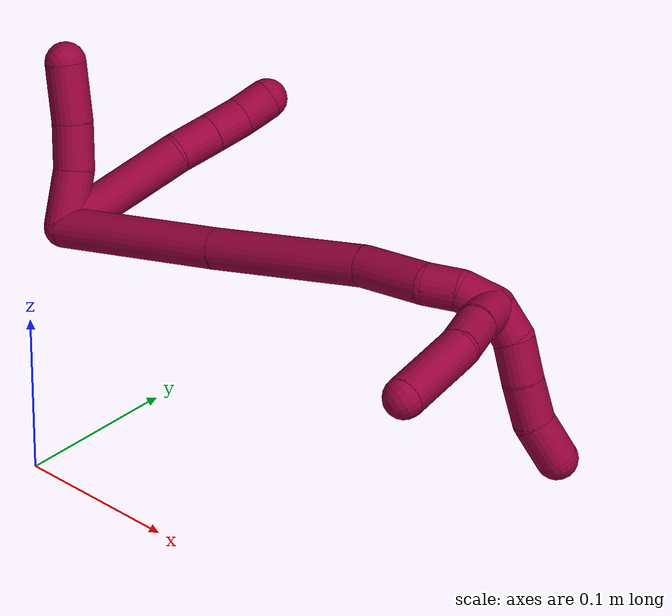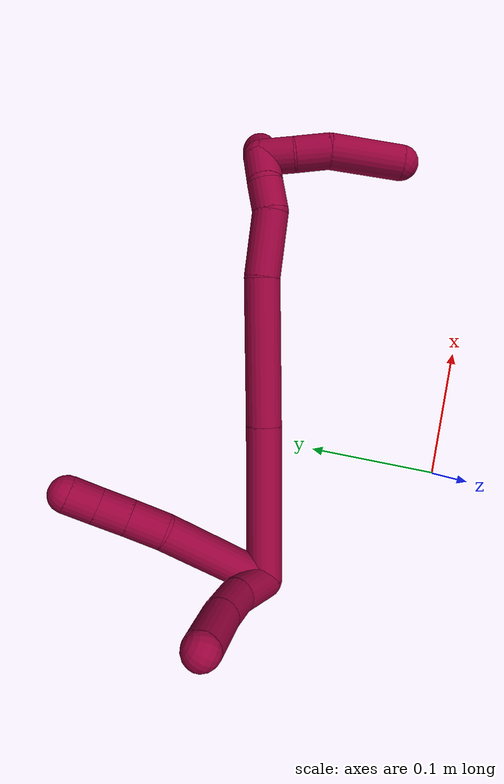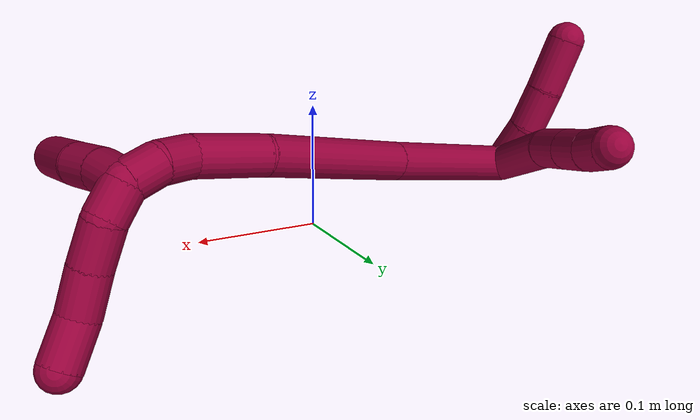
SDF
<sdf version="1.7">
 <world name="default">
  <model name="8">
   <static>0</static>
   <link name="8">
    <collision name="collision-cylinder-e_1_2_8">
     <pose>-0.00031 8.1e-05 0.040808 -0.001987 -0.007595 8e-06</pose>
     <geometry><cylinder><radius>0.0125</radius><length>0.081618</length></cylinder></geometry>
     <surface>
      <friction><ode><mu>1.16</mu><mu2>1.16</mu2><slip1>0</slip1><slip2>0</slip2></ode></friction>
      <contact><ode><kp>1e+06</kp><kd>1</kd><max_vel>0</max_vel><min_depth>0.001</min_depth></ode></contact>
     </surface>
    </collision>
    <visual name="visual-cylinder-e_1_2_8">
     <pose>-0.00031 8.1e-05 0.040808 -0.001987 -0.007595 8e-06</pose>
     <geometry><cylinder><radius>0.0125</radius><length>0.081618</length></cylinder></geometry>
     <material><ambient>0.584314 0 0.227451 1</ambient></material>
    </visual>
    <collision name="collision-cylinder-e_2_8_9">
     <pose>-0.001879 0.002417 0.094032 -0.179676 -0.099449 0.008966</pose>
     <geometry><cylinder><radius>0.0125</radius><length>0.025364</length></cylinder></geometry>
     <surface>
      <friction><ode><mu>1.16</mu><mu2>1.16</mu2><slip1>0</slip1><slip2>0</slip2></ode></friction>
      <contact><ode><kp>1e+06</kp><kd>1</kd><max_vel>0</max_vel><min_depth>0.001</min_depth></ode></contact>
     </surface>
    </collision>
    <visual name="visual-cylinder-e_2_8_9">
     <pose>-0.001879 0.002417 0.094032 -0.179676 -0.099449 0.008966</pose>
     <geometry><cylinder><radius>0.0125</radius><length>0.025364</length></cylinder></geometry>
     <material><ambient>0.584314 0 0.227451 1</ambient></material>
    </visual>
    <collision name="collision-cylinder-e_3_9_10">
     <pose>-0.00444 0.006661 0.117295 -0.181302 -0.117523 0.010695</pose>
     <geometry><cylinder><radius>0.0125</radius><length>0.022209</length></cylinder></geometry>
     <surface>
      <friction><ode><mu>1.16</mu><mu2>1.16</mu2><slip1>0</slip1><slip2>0</slip2></ode></friction>
      <contact><ode><kp>1e+06</kp><kd>1</kd><max_vel>0</max_vel><min_depth>0.001</min_depth></ode></contact>
     </surface>
    </collision>
    <visual name="visual-cylinder-e_3_9_10">
     <pose>-0.00444 0.006661 0.117295 -0.181302 -0.117523 0.010695</pose>
     <geometry><cylinder><radius>0.0125</radius><length>0.022209</length></cylinder></geometry>
     <material><ambient>0.584314 0 0.227451 1</ambient></material>
    </visual>
    <collision name="collision-cylinder-e_4_10_6">
     <pose>-0.00669 0.009343 0.13848 -0.066937 -0.091214 0.003056</pose>
     <geometry><cylinder><radius>0.0125</radius><length>0.020809</length></cylinder></geometry>
     <surface>
      <friction><ode><mu>1.16</mu><mu2>1.16</mu2><slip1>0</slip1><slip2>0</slip2></ode></friction>
      <contact><ode><kp>1e+06</kp><kd>1</kd><max_vel>0</max_vel><min_depth>0.001</min_depth></ode></contact>
     </surface>
    </collision>
    <visual name="visual-cylinder-e_4_10_6">
     <pose>-0.00669 0.009343 0.13848 -0.066937 -0.091214 0.003056</pose>
     <geometry><cylinder><radius>0.0125</radius><length>0.020809</length></cylinder></geometry>
     <material><ambient>0.584314 0 0.227451 1</ambient></material>
    </visual>
    <collision name="collision-cylinder-e_1_2_11">
     <pose>-0.00713 -0.010905 0.011574 0.755627 -0.421485 -0.169394</pose>
     <geometry><cylinder><radius>0.0125</radius><length>0.034855</length></cylinder></geometry>
     <surface>
      <friction><ode><mu>1.16</mu><mu2>1.16</mu2><slip1>0</slip1><slip2>0</slip2></ode></friction>
      <contact><ode><kp>1e+06</kp><kd>1</kd><max_vel>0</max_vel><min_depth>0.001</min_depth></ode></contact>
     </surface>
    </collision>
    <visual name="visual-cylinder-e_1_2_11">
     <pose>-0.00713 -0.010905 0.011574 0.755627 -0.421485 -0.169394</pose>
     <geometry><cylinder><radius>0.0125</radius><length>0.034855</length></cylinder></geometry>
     <material><ambient>0.584314 0 0.227451 1</ambient></material>
    </visual>
    <collision name="collision-cylinder-e_2_11_12">
     <pose>-0.019914 -0.033021 0.03003 1.02033 -0.405931 -0.22931</pose>
     <geometry><cylinder><radius>0.0125</radius><length>0.028637</length></cylinder></geometry>
     <surface>
      <friction><ode><mu>1.16</mu><mu2>1.16</mu2><slip1>0</slip1><slip2>0</slip2></ode></friction>
      <contact><ode><kp>1e+06</kp><kd>1</kd><max_vel>0</max_vel><min_depth>0.001</min_depth></ode></contact>
     </surface>
    </collision>
    <visual name="visual-cylinder-e_2_11_12">
     <pose>-0.019914 -0.033021 0.03003 1.02033 -0.405931 -0.22931</pose>
     <geometry><cylinder><radius>0.0125</radius><length>0.028637</length></cylinder></geometry>
     <material><ambient>0.584314 0 0.227451 1</ambient></material>
    </visual>
    <collision name="collision-cylinder-e_3_12_5">
     <pose>-0.032865 -0.05931 0.044166 1.12231 -0.411244 -0.260709</pose>
     <geometry><cylinder><radius>0.0125</radius><length>0.036508</length></cylinder></geometry>
     <surface>
      <friction><ode><mu>1.16</mu><mu2>1.16</mu2><slip1>0</slip1><slip2>0</slip2></ode></friction>
      <contact><ode><kp>1e+06</kp><kd>1</kd><max_vel>0</max_vel><min_depth>0.001</min_depth></ode></contact>
     </surface>
    </collision>
    <visual name="visual-cylinder-e_3_12_5">
     <pose>-0.032865 -0.05931 0.044166 1.12231 -0.411244 -0.260709</pose>
     <geometry><cylinder><radius>0.0125</radius><length>0.036508</length></cylinder></geometry>
     <material><ambient>0.584314 0 0.227451 1</ambient></material>
    </visual>
    <collision name="collision-cylinder-e_1_2_13">
     <pose>0.046749 -0.003102 0.028563 0.108189 1.01972 0.060537</pose>
     <geometry><cylinder><radius>0.0125</radius><length>0.109743</length></cylinder></geometry>
     <surface>
      <friction><ode><mu>1.16</mu><mu2>1.16</mu2><slip1>0</slip1><slip2>0</slip2></ode></friction>
      <contact><ode><kp>1e+06</kp><kd>1</kd><max_vel>0</max_vel><min_depth>0.001</min_depth></ode></contact>
     </surface>
    </collision>
    <visual name="visual-cylinder-e_1_2_13">
     <pose>0.046749 -0.003102 0.028563 0.108189 1.01972 0.060537</pose>
     <geometry><cylinder><radius>0.0125</radius><length>0.109743</length></cylinder></geometry>
     <material><ambient>0.584314 0 0.227451 1</ambient></material>
    </visual>
    <collision name="collision-cylinder-e_2_13_14">
     <pose>0.136551 -0.009855 0.084358 0.133261 1.00279 0.073118</pose>
     <geometry><cylinder><radius>0.0125</radius><length>0.102149</length></cylinder></geometry>
     <surface>
      <friction><ode><mu>1.16</mu><mu2>1.16</mu2><slip1>0</slip1><slip2>0</slip2></ode></friction>
      <contact><ode><kp>1e+06</kp><kd>1</kd><max_vel>0</max_vel><min_depth>0.001</min_depth></ode></contact>
     </surface>
    </collision>
    <visual name="visual-cylinder-e_2_13_14">
     <pose>0.136551 -0.009855 0.084358 0.133261 1.00279 0.073118</pose>
     <geometry><cylinder><radius>0.0125</radius><length>0.102149</length></cylinder></geometry>
     <material><ambient>0.584314 0 0.227451 1</ambient></material>
    </visual>
    <collision name="collision-cylinder-e_3_14_15">
     <pose>0.200505 -0.014649 0.120652 0.125485 1.15876 0.082164</pose>
     <geometry><cylinder><radius>0.0125</radius><length>0.045616</length></cylinder></geometry>
     <surface>
      <friction><ode><mu>1.16</mu><mu2>1.16</mu2><slip1>0</slip1><slip2>0</slip2></ode></friction>
      <contact><ode><kp>1e+06</kp><kd>1</kd><max_vel>0</max_vel><min_depth>0.001</min_depth></ode></contact>
     </surface>
    </collision>
    <visual name="visual-cylinder-e_3_14_15">
     <pose>0.200505 -0.014649 0.120652 0.125485 1.15876 0.082164</pose>
     <geometry><cylinder><radius>0.0125</radius><length>0.045616</length></cylinder></geometry>
     <material><ambient>0.584314 0 0.227451 1</ambient></material>
    </visual>
    <collision name="collision-cylinder-e_4_15_16">
     <pose>0.229616 -0.014143 0.136078 -0.253613 0.895763 -0.122352</pose>
     <geometry><cylinder><radius>0.0125</radius><length>0.021039</length></cylinder></geometry>
     <surface>
      <friction><ode><mu>1.16</mu><mu2>1.16</mu2><slip1>0</slip1><slip2>0</slip2></ode></friction>
      <contact><ode><kp>1e+06</kp><kd>1</kd><max_vel>0</max_vel><min_depth>0.001</min_depth></ode></contact>
     </surface>
    </collision>
    <visual name="visual-cylinder-e_4_15_16">
     <pose>0.229616 -0.014143 0.136078 -0.253613 0.895763 -0.122352</pose>
     <geometry><cylinder><radius>0.0125</radius><length>0.021039</length></cylinder></geometry>
     <material><ambient>0.584314 0 0.227451 1</ambient></material>
    </visual>
    <collision name="collision-cylinder-e_5_16_1">
     <pose>0.246338 -0.00809 0.147263 -0.740067 0.91628 -0.378009</pose>
     <geometry><cylinder><radius>0.0125</radius><length>0.021454</length></cylinder></geometry>
     <surface>
      <friction><ode><mu>1.16</mu><mu2>1.16</mu2><slip1>0</slip1><slip2>0</slip2></ode></friction>
      <contact><ode><kp>1e+06</kp><kd>1</kd><max_vel>0</max_vel><min_depth>0.001</min_depth></ode></contact>
     </surface>
    </collision>
    <visual name="visual-cylinder-e_5_16_1">
     <pose>0.246338 -0.00809 0.147263 -0.740067 0.91628 -0.378009</pose>
     <geometry><cylinder><radius>0.0125</radius><length>0.021454</length></cylinder></geometry>
     <material><ambient>0.584314 0 0.227451 1</ambient></material>
    </visual>
    <collision name="collision-cylinder-e_1_1_17">
     <pose>0.260728 0.005085 0.152192 -1.5587 0.590499 -0.583796</pose>
     <geometry><cylinder><radius>0.0125</radius><length>0.021121</length></cylinder></geometry>
     <surface>
      <friction><ode><mu>1.16</mu><mu2>1.16</mu2><slip1>0</slip1><slip2>0</slip2></ode></friction>
      <contact><ode><kp>1e+06</kp><kd>1</kd><max_vel>0</max_vel><min_depth>0.001</min_depth></ode></contact>
     </surface>
    </collision>
    <visual name="visual-cylinder-e_1_1_17">
     <pose>0.260728 0.005085 0.152192 -1.5587 0.590499 -0.583796</pose>
     <geometry><cylinder><radius>0.0125</radius><length>0.021121</length></cylinder></geometry>
     <material><ambient>0.584314 0 0.227451 1</ambient></material>
    </visual>
    <collision name="collision-cylinder-e_2_17_18">
     <pose>0.271863 0.024911 0.148669 -1.88801 0.424211 -0.578048</pose>
     <geometry><cylinder><radius>0.0125</radius><length>0.025532</length></cylinder></geometry>
     <surface>
      <friction><ode><mu>1.16</mu><mu2>1.16</mu2><slip1>0</slip1><slip2>0</slip2></ode></friction>
      <contact><ode><kp>1e+06</kp><kd>1</kd><max_vel>0</max_vel><min_depth>0.001</min_depth></ode></contact>
     </surface>
    </collision>
    <visual name="visual-cylinder-e_2_17_18">
     <pose>0.271863 0.024911 0.148669 -1.88801 0.424211 -0.578048</pose>
     <geometry><cylinder><radius>0.0125</radius><length>0.025532</length></cylinder></geometry>
     <material><ambient>0.584314 0 0.227451 1</ambient></material>
    </visual>
    <collision name="collision-cylinder-e_3_18_19">
     <pose>0.281848 0.047908 0.142151 -1.80813 0.367528 -0.46386</pose>
     <geometry><cylinder><radius>0.0125</radius><length>0.026333</length></cylinder></geometry>
     <surface>
      <friction><ode><mu>1.16</mu><mu2>1.16</mu2><slip1>0</slip1><slip2>0</slip2></ode></friction>
      <contact><ode><kp>1e+06</kp><kd>1</kd><max_vel>0</max_vel><min_depth>0.001</min_depth></ode></contact>
     </surface>
    </collision>
    <visual name="visual-cylinder-e_3_18_19">
     <pose>0.281848 0.047908 0.142151 -1.80813 0.367528 -0.46386</pose>
     <geometry><cylinder><radius>0.0125</radius><length>0.026333</length></cylinder></geometry>
     <material><ambient>0.584314 0 0.227451 1</ambient></material>
    </visual>
    <collision name="collision-cylinder-e_4_19_4">
     <pose>0.29245 0.071999 0.139885 -1.51957 0.449715 -0.427944</pose>
     <geometry><cylinder><radius>0.0125</radius><length>0.027014</length></cylinder></geometry>
     <surface>
      <friction><ode><mu>1.16</mu><mu2>1.16</mu2><slip1>0</slip1><slip2>0</slip2></ode></friction>
      <contact><ode><kp>1e+06</kp><kd>1</kd><max_vel>0</max_vel><min_depth>0.001</min_depth></ode></contact>
     </surface>
    </collision>
    <visual name="visual-cylinder-e_4_19_4">
     <pose>0.29245 0.071999 0.139885 -1.51957 0.449715 -0.427944</pose>
     <geometry><cylinder><radius>0.0125</radius><length>0.027014</length></cylinder></geometry>
     <material><ambient>0.584314 0 0.227451 1</ambient></material>
    </visual>
    <collision name="collision-cylinder-e_1_1_20">
     <pose>0.260801 -0.008544 0.143353 2.63395 0.537243 1.63009</pose>
     <geometry><cylinder><radius>0.0125</radius><length>0.023263</length></cylinder></geometry>
     <surface>
      <friction><ode><mu>1.16</mu><mu2>1.16</mu2><slip1>0</slip1><slip2>0</slip2></ode></friction>
      <contact><ode><kp>1e+06</kp><kd>1</kd><max_vel>0</max_vel><min_depth>0.001</min_depth></ode></contact>
     </surface>
    </collision>
    <visual name="visual-cylinder-e_1_1_20">
     <pose>0.260801 -0.008544 0.143353 2.63395 0.537243 1.63009</pose>
     <geometry><cylinder><radius>0.0125</radius><length>0.023263</length></cylinder></geometry>
     <material><ambient>0.584314 0 0.227451 1</ambient></material>
    </visual>
    <collision name="collision-cylinder-e_2_20_21">
     <pose>0.27399 -0.016999 0.125154 2.77846 0.620472 2.10145</pose>
     <geometry><cylinder><radius>0.0125</radius><length>0.024893</length></cylinder></geometry>
     <surface>
      <friction><ode><mu>1.16</mu><mu2>1.16</mu2><slip1>0</slip1><slip2>0</slip2></ode></friction>
      <contact><ode><kp>1e+06</kp><kd>1</kd><max_vel>0</max_vel><min_depth>0.001</min_depth></ode></contact>
     </surface>
    </collision>
    <visual name="visual-cylinder-e_2_20_21">
     <pose>0.27399 -0.016999 0.125154 2.77846 0.620472 2.10145</pose>
     <geometry><cylinder><radius>0.0125</radius><length>0.024893</length></cylinder></geometry>
     <material><ambient>0.584314 0 0.227451 1</ambient></material>
    </visual>
    <collision name="collision-cylinder-e_3_21_3">
     <pose>0.291026 -0.026776 0.092499 2.88113 0.387638 1.96476</pose>
     <geometry><cylinder><radius>0.0125</radius><length>0.051844</length></cylinder></geometry>
     <surface>
      <friction><ode><mu>1.16</mu><mu2>1.16</mu2><slip1>0</slip1><slip2>0</slip2></ode></friction>
      <contact><ode><kp>1e+06</kp><kd>1</kd><max_vel>0</max_vel><min_depth>0.001</min_depth></ode></contact>
     </surface>
    </collision>
    <visual name="visual-cylinder-e_3_21_3">
     <pose>0.291026 -0.026776 0.092499 2.88113 0.387638 1.96476</pose>
     <geometry><cylinder><radius>0.0125</radius><length>0.051844</length></cylinder></geometry>
     <material><ambient>0.584314 0 0.227451 1</ambient></material>
    </visual>
    <collision name="collision-sphere-3">
     <pose>0.300824 -0.032956 0.069309 0 -0 0</pose>
     <geometry><sphere><radius>0.0125</radius></sphere></geometry>
     <surface>
      <friction><ode><mu>1.16</mu><mu2>1.16</mu2><slip1>0</slip1><slip2>0</slip2></ode></friction>
      <contact><ode><kp>1e+06</kp><kd>1</kd><max_vel>0</max_vel><min_depth>0.001</min_depth></ode></contact>
     </surface>
    </collision>
    <visual name="visual-sphere-3">
     <pose>0.300824 -0.032956 0.069309 0 -0 0</pose>
     <geometry><sphere><radius>0.0125</radius></sphere></geometry>
     <material><ambient>0.584314 0 0.227451 1</ambient></material>
    </visual>
    <collision name="collision-sphere-21">
     <pose>0.281227 -0.020596 0.115688 0 -0 0</pose>
     <geometry><sphere><radius>0.0125</radius></sphere></geometry>
     <surface>
      <friction><ode><mu>1.16</mu><mu2>1.16</mu2><slip1>0</slip1><slip2>0</slip2></ode></friction>
      <contact><ode><kp>1e+06</kp><kd>1</kd><max_vel>0</max_vel><min_depth>0.001</min_depth></ode></contact>
     </surface>
    </collision>
    <visual name="visual-sphere-21">
     <pose>0.281227 -0.020596 0.115688 0 -0 0</pose>
     <geometry><sphere><radius>0.0125</radius></sphere></geometry>
     <material><ambient>0.584314 0 0.227451 1</ambient></material>
    </visual>
    <collision name="collision-sphere-20">
     <pose>0.266754 -0.013402 0.13462 0 -0 0</pose>
     <geometry><sphere><radius>0.0125</radius></sphere></geometry>
     <surface>
      <friction><ode><mu>1.16</mu><mu2>1.16</mu2><slip1>0</slip1><slip2>0</slip2></ode></friction>
      <contact><ode><kp>1e+06</kp><kd>1</kd><max_vel>0</max_vel><min_depth>0.001</min_depth></ode></contact>
     </surface>
    </collision>
    <visual name="visual-sphere-20">
     <pose>0.266754 -0.013402 0.13462 0 -0 0</pose>
     <geometry><sphere><radius>0.0125</radius></sphere></geometry>
     <material><ambient>0.584314 0 0.227451 1</ambient></material>
    </visual>
    <collision name="collision-sphere-4">
     <pose>0.298322 0.084147 0.140508 0 -0 0</pose>
     <geometry><sphere><radius>0.0125</radius></sphere></geometry>
     <surface>
      <friction><ode><mu>1.16</mu><mu2>1.16</mu2><slip1>0</slip1><slip2>0</slip2></ode></friction>
      <contact><ode><kp>1e+06</kp><kd>1</kd><max_vel>0</max_vel><min_depth>0.001</min_depth></ode></contact>
     </surface>
    </collision>
    <visual name="visual-sphere-4">
     <pose>0.298322 0.084147 0.140508 0 -0 0</pose>
     <geometry><sphere><radius>0.0125</radius></sphere></geometry>
     <material><ambient>0.584314 0 0.227451 1</ambient></material>
    </visual>
    <collision name="collision-sphere-11">
     <pose>-0.01426 -0.02181 0.023149 0 -0 0</pose>
     <geometry><sphere><radius>0.0125</radius></sphere></geometry>
     <surface>
      <friction><ode><mu>1.16</mu><mu2>1.16</mu2><slip1>0</slip1><slip2>0</slip2></ode></friction>
      <contact><ode><kp>1e+06</kp><kd>1</kd><max_vel>0</max_vel><min_depth>0.001</min_depth></ode></contact>
     </surface>
    </collision>
    <visual name="visual-sphere-11">
     <pose>-0.01426 -0.02181 0.023149 0 -0 0</pose>
     <geometry><sphere><radius>0.0125</radius></sphere></geometry>
     <material><ambient>0.584314 0 0.227451 1</ambient></material>
    </visual>
    <collision name="collision-sphere-6">
     <pose>-0.007638 0.010036 0.148818 0 -0 0</pose>
     <geometry><sphere><radius>0.0125</radius></sphere></geometry>
     <surface>
      <friction><ode><mu>1.16</mu><mu2>1.16</mu2><slip1>0</slip1><slip2>0</slip2></ode></friction>
      <contact><ode><kp>1e+06</kp><kd>1</kd><max_vel>0</max_vel><min_depth>0.001</min_depth></ode></contact>
     </surface>
    </collision>
    <visual name="visual-sphere-6">
     <pose>-0.007638 0.010036 0.148818 0 -0 0</pose>
     <geometry><sphere><radius>0.0125</radius></sphere></geometry>
     <material><ambient>0.584314 0 0.227451 1</ambient></material>
    </visual>
    <collision name="collision-sphere-10">
     <pose>-0.005742 0.008649 0.128142 0 -0 0</pose>
     <geometry><sphere><radius>0.0125</radius></sphere></geometry>
     <surface>
      <friction><ode><mu>1.16</mu><mu2>1.16</mu2><slip1>0</slip1><slip2>0</slip2></ode></friction>
      <contact><ode><kp>1e+06</kp><kd>1</kd><max_vel>0</max_vel><min_depth>0.001</min_depth></ode></contact>
     </surface>
    </collision>
    <visual name="visual-sphere-10">
     <pose>-0.005742 0.008649 0.128142 0 -0 0</pose>
     <geometry><sphere><radius>0.0125</radius></sphere></geometry>
     <material><ambient>0.584314 0 0.227451 1</ambient></material>
    </visual>
    <collision name="collision-sphere-9">
     <pose>-0.003138 0.004673 0.106448 0 -0 0</pose>
     <geometry><sphere><radius>0.0125</radius></sphere></geometry>
     <surface>
      <friction><ode><mu>1.16</mu><mu2>1.16</mu2><slip1>0</slip1><slip2>0</slip2></ode></friction>
      <contact><ode><kp>1e+06</kp><kd>1</kd><max_vel>0</max_vel><min_depth>0.001</min_depth></ode></contact>
     </surface>
    </collision>
    <visual name="visual-sphere-9">
     <pose>-0.003138 0.004673 0.106448 0 -0 0</pose>
     <geometry><sphere><radius>0.0125</radius></sphere></geometry>
     <material><ambient>0.584314 0 0.227451 1</ambient></material>
    </visual>
    <collision name="collision-sphere-2">
     <geometry><sphere><radius>0.0125</radius></sphere></geometry>
     <surface>
      <friction><ode><mu>1.16</mu><mu2>1.16</mu2><slip1>0</slip1><slip2>0</slip2></ode></friction>
      <contact><ode><kp>1e+06</kp><kd>1</kd><max_vel>0</max_vel><min_depth>0.001</min_depth></ode></contact>
     </surface>
    </collision>
    <visual name="visual-sphere-2">
     <geometry><sphere><radius>0.0125</radius></sphere></geometry>
     <material><ambient>0.584314 0 0.227451 1</ambient></material>
    </visual>
    <collision name="collision-sphere-19">
     <pose>0.286579 0.059851 0.139262 0 -0 0</pose>
     <geometry><sphere><radius>0.0125</radius></sphere></geometry>
     <surface>
      <friction><ode><mu>1.16</mu><mu2>1.16</mu2><slip1>0</slip1><slip2>0</slip2></ode></friction>
      <contact><ode><kp>1e+06</kp><kd>1</kd><max_vel>0</max_vel><min_depth>0.001</min_depth></ode></contact>
     </surface>
    </collision>
    <visual name="visual-sphere-19">
     <pose>0.286579 0.059851 0.139262 0 -0 0</pose>
     <geometry><sphere><radius>0.0125</radius></sphere></geometry>
     <material><ambient>0.584314 0 0.227451 1</ambient></material>
    </visual>
    <collision name="collision-sphere-8">
     <pose>-0.00062 0.000162 0.081616 0 -0 0</pose>
     <geometry><sphere><radius>0.0125</radius></sphere></geometry>
     <surface>
      <friction><ode><mu>1.16</mu><mu2>1.16</mu2><slip1>0</slip1><slip2>0</slip2></ode></friction>
      <contact><ode><kp>1e+06</kp><kd>1</kd><max_vel>0</max_vel><min_depth>0.001</min_depth></ode></contact>
     </surface>
    </collision>
    <visual name="visual-sphere-8">
     <pose>-0.00062 0.000162 0.081616 0 -0 0</pose>
     <geometry><sphere><radius>0.0125</radius></sphere></geometry>
     <material><ambient>0.584314 0 0.227451 1</ambient></material>
    </visual>
    <collision name="collision-sphere-12">
     <pose>-0.025568 -0.044233 0.036911 0 -0 0</pose>
     <geometry><sphere><radius>0.0125</radius></sphere></geometry>
     <surface>
      <friction><ode><mu>1.16</mu><mu2>1.16</mu2><slip1>0</slip1><slip2>0</slip2></ode></friction>
      <contact><ode><kp>1e+06</kp><kd>1</kd><max_vel>0</max_vel><min_depth>0.001</min_depth></ode></contact>
     </surface>
    </collision>
    <visual name="visual-sphere-12">
     <pose>-0.025568 -0.044233 0.036911 0 -0 0</pose>
     <geometry><sphere><radius>0.0125</radius></sphere></geometry>
     <material><ambient>0.584314 0 0.227451 1</ambient></material>
    </visual>
    <collision name="collision-sphere-5">
     <pose>-0.040162 -0.074388 0.051421 0 -0 0</pose>
     <geometry><sphere><radius>0.0125</radius></sphere></geometry>
     <surface>
      <friction><ode><mu>1.16</mu><mu2>1.16</mu2><slip1>0</slip1><slip2>0</slip2></ode></friction>
      <contact><ode><kp>1e+06</kp><kd>1</kd><max_vel>0</max_vel><min_depth>0.001</min_depth></ode></contact>
     </surface>
    </collision>
    <visual name="visual-sphere-5">
     <pose>-0.040162 -0.074388 0.051421 0 -0 0</pose>
     <geometry><sphere><radius>0.0125</radius></sphere></geometry>
     <material><ambient>0.584314 0 0.227451 1</ambient></material>
    </visual>
    <collision name="collision-sphere-13">
     <pose>0.093497 -0.006205 0.057126 0 -0 0</pose>
     <geometry><sphere><radius>0.0125</radius></sphere></geometry>
     <surface>
      <friction><ode><mu>1.16</mu><mu2>1.16</mu2><slip1>0</slip1><slip2>0</slip2></ode></friction>
      <contact><ode><kp>1e+06</kp><kd>1</kd><max_vel>0</max_vel><min_depth>0.001</min_depth></ode></contact>
     </surface>
    </collision>
    <visual name="visual-sphere-13">
     <pose>0.093497 -0.006205 0.057126 0 -0 0</pose>
     <geometry><sphere><radius>0.0125</radius></sphere></geometry>
     <material><ambient>0.584314 0 0.227451 1</ambient></material>
    </visual>
    <collision name="collision-sphere-14">
     <pose>0.179606 -0.013506 0.11159 0 -0 0</pose>
     <geometry><sphere><radius>0.0125</radius></sphere></geometry>
     <surface>
      <friction><ode><mu>1.16</mu><mu2>1.16</mu2><slip1>0</slip1><slip2>0</slip2></ode></friction>
      <contact><ode><kp>1e+06</kp><kd>1</kd><max_vel>0</max_vel><min_depth>0.001</min_depth></ode></contact>
     </surface>
    </collision>
    <visual name="visual-sphere-14">
     <pose>0.179606 -0.013506 0.11159 0 -0 0</pose>
     <geometry><sphere><radius>0.0125</radius></sphere></geometry>
     <material><ambient>0.584314 0 0.227451 1</ambient></material>
    </visual>
    <collision name="collision-sphere-15">
     <pose>0.221404 -0.015792 0.129714 0 -0 0</pose>
     <geometry><sphere><radius>0.0125</radius></sphere></geometry>
     <surface>
      <friction><ode><mu>1.16</mu><mu2>1.16</mu2><slip1>0</slip1><slip2>0</slip2></ode></friction>
      <contact><ode><kp>1e+06</kp><kd>1</kd><max_vel>0</max_vel><min_depth>0.001</min_depth></ode></contact>
     </surface>
    </collision>
    <visual name="visual-sphere-15">
     <pose>0.221404 -0.015792 0.129714 0 -0 0</pose>
     <geometry><sphere><radius>0.0125</radius></sphere></geometry>
     <material><ambient>0.584314 0 0.227451 1</ambient></material>
    </visual>
    <collision name="collision-sphere-16">
     <pose>0.237828 -0.012493 0.142441 0 -0 0</pose>
     <geometry><sphere><radius>0.0125</radius></sphere></geometry>
     <surface>
      <friction><ode><mu>1.16</mu><mu2>1.16</mu2><slip1>0</slip1><slip2>0</slip2></ode></friction>
      <contact><ode><kp>1e+06</kp><kd>1</kd><max_vel>0</max_vel><min_depth>0.001</min_depth></ode></contact>
     </surface>
    </collision>
    <visual name="visual-sphere-16">
     <pose>0.237828 -0.012493 0.142441 0 -0 0</pose>
     <geometry><sphere><radius>0.0125</radius></sphere></geometry>
     <material><ambient>0.584314 0 0.227451 1</ambient></material>
    </visual>
    <collision name="collision-sphere-1">
     <pose>0.254849 -0.003686 0.152086 0 -0 0</pose>
     <geometry><sphere><radius>0.0125</radius></sphere></geometry>
     <surface>
      <friction><ode><mu>1.16</mu><mu2>1.16</mu2><slip1>0</slip1><slip2>0</slip2></ode></friction>
      <contact><ode><kp>1e+06</kp><kd>1</kd><max_vel>0</max_vel><min_depth>0.001</min_depth></ode></contact>
     </surface>
    </collision>
    <visual name="visual-sphere-1">
     <pose>0.254849 -0.003686 0.152086 0 -0 0</pose>
     <geometry><sphere><radius>0.0125</radius></sphere></geometry>
     <material><ambient>0.584314 0 0.227451 1</ambient></material>
    </visual>
    <collision name="collision-sphere-18">
     <pose>0.277117 0.035965 0.14504 0 -0 0</pose>
     <geometry><sphere><radius>0.0125</radius></sphere></geometry>
     <surface>
      <friction><ode><mu>1.16</mu><mu2>1.16</mu2><slip1>0</slip1><slip2>0</slip2></ode></friction>
      <contact><ode><kp>1e+06</kp><kd>1</kd><max_vel>0</max_vel><min_depth>0.001</min_depth></ode></contact>
     </surface>
    </collision>
    <visual name="visual-sphere-18">
     <pose>0.277117 0.035965 0.14504 0 -0 0</pose>
     <geometry><sphere><radius>0.0125</radius></sphere></geometry>
     <material><ambient>0.584314 0 0.227451 1</ambient></material>
    </visual>
    <collision name="collision-sphere-17">
     <pose>0.266608 0.013857 0.152298 0 -0 0</pose>
     <geometry><sphere><radius>0.0125</radius></sphere></geometry>
     <surface>
      <friction><ode><mu>1.16</mu><mu2>1.16</mu2><slip1>0</slip1><slip2>0</slip2></ode></friction>
      <contact><ode><kp>1e+06</kp><kd>1</kd><max_vel>0</max_vel><min_depth>0.001</min_depth></ode></contact>
     </surface>
    </collision>
    <visual name="visual-sphere-17">
     <pose>0.266608 0.013857 0.152298 0 -0 0</pose>
     <geometry><sphere><radius>0.0125</radius></sphere></geometry>
     <material><ambient>0.584314 0 0.227451 1</ambient></material>
    </visual>
    <inertial>
     <pose>0.122343 -0.004836 0.084178 0 -0 0</pose>
     <mass>0.75</mass>
     <inertia>
      <ixx>0.000222</ixx>
      <ixy>0</ixy>
      <ixz>0</ixz>
      <iyy>0.000306</iyy>
      <iyz>0</iyz>
      <izz>-0.000154</izz>
     </inertia>
    </inertial>
   </link>
   <pose>-0.095584 0.120135 0.069541 -1.19557 0.080391 -0.291536</pose>
  </model>
 </world>
</sdf>
